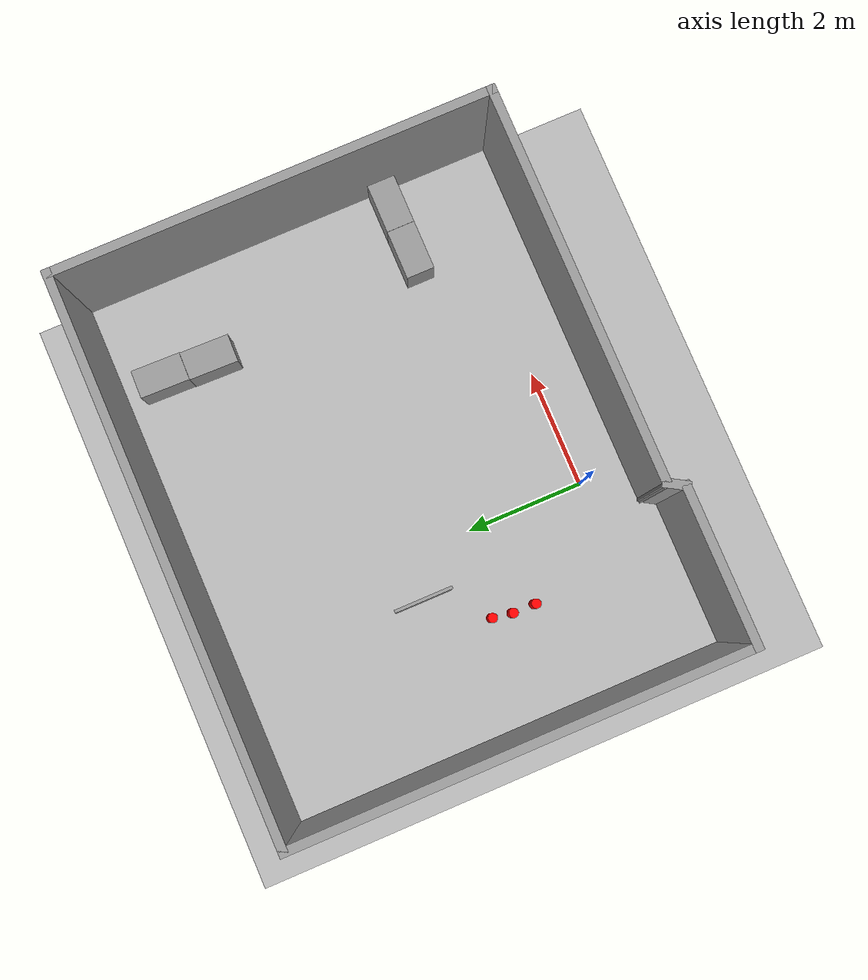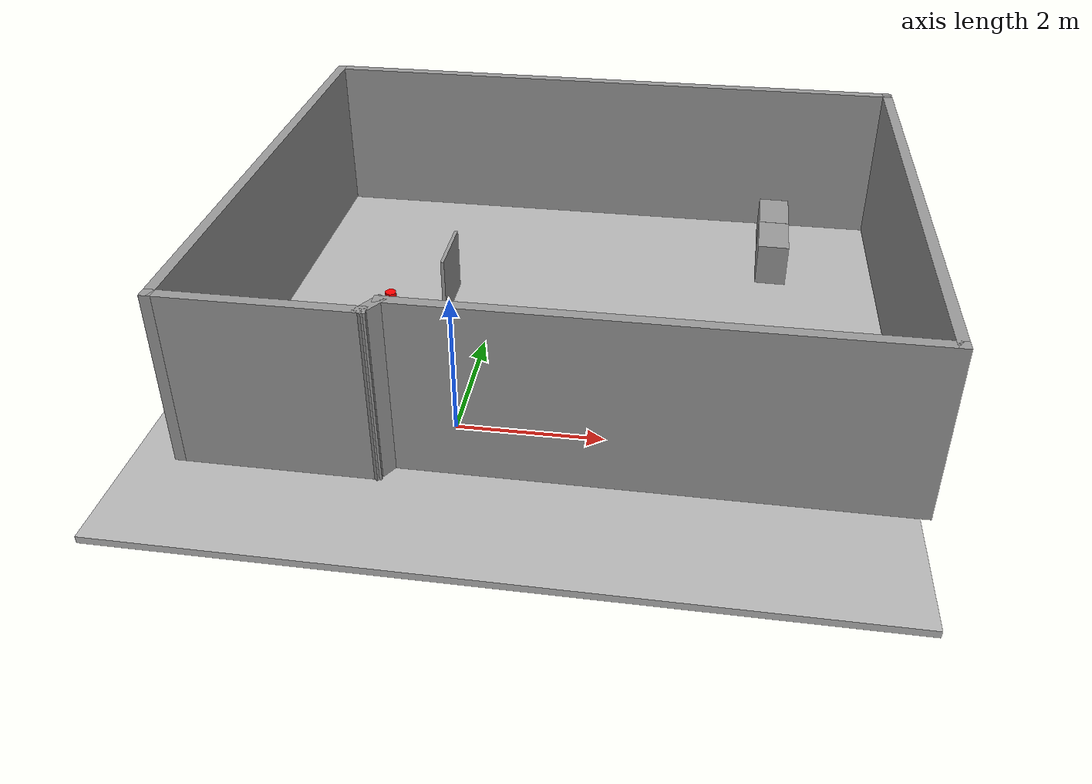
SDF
<sdf version="1.6">
 <world name="default">
  <scene>
   <ambient>0 0 0 1</ambient>
   <shadows>0</shadows>
   <grid>0</grid>
   <background>0.7 0.7 0.7 1</background>
  </scene>
  <light name="sun" type="directional">
   <pose>0 0 10 0 -0 0</pose>
   <diffuse>0.8 0.8 0.8 1</diffuse>
   <specular>0.2 0.2 0.2 1</specular>
   <attenuation>
    <range>1000</range>
    <constant>0.9</constant>
    <linear>0.01</linear>
    <quadratic>0.001</quadratic>
   </attenuation>
   <direction>-0.5 0.1 -0.9</direction>
  </light>
  <model name="ground">
   <pose>0.935909 2.37474 -0.1 0 -0 0</pose>
   <static>1</static>
   <link name="ground">
    <collision name="ground_coll"><geometry><box><size>10 10 0.1</size></box></geometry></collision>
    <visual name="ground_vis">
     <geometry><box><size>10 10 0.1</size></box></geometry>
     <material><script><uri>file://course.material</uri><name>course</name></script></material>
    </visual>
   </link>
  </model>
  <gravity>0 0 -9.8</gravity>
  <magnetic_field>6e-06 2.3e-05 -4.2e-05</magnetic_field>
  <atmosphere type="adiabatic"/>
  <physics name="default_physics" default="0" type="ode">
   <max_step_size>0.001</max_step_size>
   <real_time_factor>1</real_time_factor>
   <real_time_update_rate>1000</real_time_update_rate>
  </physics>
  <spherical_coordinates>
   <surface_model>EARTH_WGS84</surface_model>
   <latitude_deg>0</latitude_deg>
   <longitude_deg>0</longitude_deg>
   <elevation>0</elevation>
   <heading_deg>0</heading_deg>
  </spherical_coordinates>
  <model name="wall">
   <pose>1.305 2.67605 0 0 -0 0</pose>
   <link name="Wall_1">
    <collision name="Wall_1_Collision">
     <geometry><box><size>2.75 0.15 2.5</size></box></geometry>
     <pose>0 0 1.25 0 -0 0</pose>
    </collision>
    <visual name="Wall_1_Visual">
     <pose>0 0 1.25 0 -0 0</pose>
     <geometry><box><size>2.75 0.15 2.5</size></box></geometry>
     <material>
      <script><uri>file://media/materials/scripts/gazebo.material</uri><name>Gazebo/Grey</name></script>
      <ambient>1 1 1 1</ambient>
     </material>
     <meta><layer>0</layer></meta>
    </visual>
    <pose>-3.375 -3.78605 0 0 -0 3.14159</pose>
   </link>
   <link name="Wall_2">
    <collision name="Wall_2_Collision">
     <geometry><box><size>7.75 0.15 2.5</size></box></geometry>
     <pose>0 0 1.25 0 -0 0</pose>
    </collision>
    <visual name="Wall_2_Visual">
     <pose>0 0 1.25 0 -0 0</pose>
     <geometry><box><size>7.75 0.15 2.5</size></box></geometry>
     <material>
      <script><uri>file://media/materials/scripts/gazebo.material</uri><name>Gazebo/Grey</name></script>
      <ambient>1 1 1 1</ambient>
     </material>
     <meta><layer>0</layer></meta>
    </visual>
    <pose>-4.675 0.013949 0 0 -0 1.5708</pose>
   </link>
   <link name="Wall_3">
    <collision name="Wall_3_Collision">
     <geometry><box><size>9.5 0.15 2.5</size></box></geometry>
     <pose>0 0 1.25 0 -0 0</pose>
    </collision>
    <visual name="Wall_3_Visual">
     <pose>0 0 1.25 0 -0 0</pose>
     <geometry><box><size>9.5 0.15 2.5</size></box></geometry>
     <material>
      <script><uri>file://media/materials/scripts/gazebo.material</uri><name>Gazebo/Grey</name></script>
      <ambient>1 1 1 1</ambient>
     </material>
     <meta><layer>0</layer></meta>
    </visual>
    <pose>0 3.81395 0 0 -0 0</pose>
   </link>
   <link name="Wall_4">
    <collision name="Wall_4_Collision">
     <geometry><box><size>7.5 0.15 2.5</size></box></geometry>
     <pose>0 0 1.25 0 -0 0</pose>
    </collision>
    <visual name="Wall_4_Visual">
     <pose>0 0 1.25 0 -0 0</pose>
     <geometry><box><size>7.5 0.15 2.5</size></box></geometry>
     <material>
      <script><uri>file://media/materials/scripts/gazebo.material</uri><name>Gazebo/Grey</name></script>
      <ambient>1 1 1 1</ambient>
     </material>
     <meta><layer>0</layer></meta>
    </visual>
    <pose>4.675 0.138949 0 0 0 -1.5708</pose>
   </link>
   <link name="Wall_5">
    <collision name="Wall_5_Collision">
     <geometry><box><size>6.75 0.15 2.5</size></box></geometry>
     <pose>0 0 1.25 0 -0 0</pose>
    </collision>
    <visual name="Wall_5_Visual">
     <pose>0 0 1.25 0 -0 0</pose>
     <geometry><box><size>6.75 0.15 2.5</size></box></geometry>
     <material>
      <script><uri>file://media/materials/scripts/gazebo.material</uri><name>Gazebo/Grey</name></script>
      <ambient>1 1 1 1</ambient>
     </material>
     <meta><layer>0</layer></meta>
    </visual>
    <pose>1.375 -3.53605 0 0 -0 3.14159</pose>
   </link>
   <link name="Wall_6">
    <collision name="Wall_6_Collision">
     <geometry><box><size>0.441548 0.15 2.5</size></box></geometry>
     <pose>0 0 1.25 0 -0 0</pose>
    </collision>
    <visual name="Wall_6_Visual">
     <pose>0 0 1.25 0 -0 0</pose>
     <geometry><box><size>0.441548 0.15 2.5</size></box></geometry>
     <material>
      <script><uri>file://media/materials/scripts/gazebo.material</uri><name>Gazebo/Grey</name></script>
      <ambient>1 1 1 1</ambient>
     </material>
     <meta><layer>0</layer></meta>
    </visual>
    <pose>-2 -3.66105 0 0 0 -2.11122</pose>
   </link>
   <static>1</static>
  </model>
  <model name="unit_box">
   <link name="link">
    <inertial>
     <mass>1</mass>
     <inertia>
      <ixx>0.166667</ixx>
      <ixy>0</ixy>
      <ixz>0</ixz>
      <iyy>0.166667</iyy>
      <iyz>0</iyz>
      <izz>0.166667</izz>
     </inertia>
    </inertial>
    <visual name="visual">
     <geometry><box><size>0.847755 0.481233 0.678293</size></box></geometry>
     <material>
      <script><name>Gazebo/Grey</name><uri>file://media/materials/scripts/gazebo.material</uri></script>
      <shader type="pixel"><normal_map>__default__</normal_map></shader>
      <ambient>0.3 0.3 0.3 1</ambient>
      <diffuse>0.7 0.7 0.7 1</diffuse>
      <specular>0.01 0.01 0.01 1</specular>
      <emissive>0 0 0 1</emissive>
     </material>
    </visual>
    <collision name="collision">
     <geometry><box><size>0.847755 0.481233 0.678293</size></box></geometry>
     <surface>
      <friction>
       <ode><mu>1</mu><mu2>1</mu2><fdir1>0 0 0</fdir1><slip1>0</slip1><slip2>0</slip2></ode>
       <torsional>
        <coefficient>1</coefficient>
        <patch_radius>0</patch_radius>
        <surface_radius>0</surface_radius>
        <use_patch_radius>1</use_patch_radius>
        <ode><slip>0</slip></ode>
       </torsional>
      </friction>
      <bounce><restitution_coefficient>0</restitution_coefficient><threshold>1e+06</threshold></bounce>
      <contact>
       <collide_without_contact>0</collide_without_contact>
       <collide_without_contact_bitmask>1</collide_without_contact_bitmask>
       <collide_bitmask>1</collide_bitmask>
       <ode>
        <soft_cfm>0</soft_cfm>
        <soft_erp>0.2</soft_erp>
        <kp>1e+13</kp>
        <kd>1</kd>
        <max_vel>0.01</max_vel>
        <min_depth>0</min_depth>
       </ode>
       <bullet>
        <split_impulse>1</split_impulse>
        <split_impulse_penetration_threshold>-0.01</split_impulse_penetration_threshold>
        <soft_cfm>0</soft_cfm>
        <soft_erp>0.2</soft_erp>
        <kp>1e+13</kp>
        <kd>1</kd>
       </bullet>
      </contact>
     </surface>
    </collision>
   </link>
   <static>0</static>
   <pose>5.4793 1.09441 0.289141 4e-06 -8e-06 -4.3e-05</pose>
  </model>
  <model name="unit_box_clone">
   <link name="link">
    <inertial>
     <mass>1</mass>
     <inertia>
      <ixx>0.166667</ixx>
      <ixy>0</ixy>
      <ixz>0</ixz>
      <iyy>0.166667</iyy>
      <iyz>0</iyz>
      <izz>0.166667</izz>
     </inertia>
    </inertial>
    <visual name="visual">
     <geometry><box><size>0.847755 0.481233 0.678293</size></box></geometry>
     <material>
      <script><name>Gazebo/Grey</name><uri>file://media/materials/scripts/gazebo.material</uri></script>
      <shader type="pixel"><normal_map>__default__</normal_map></shader>
      <ambient>0.3 0.3 0.3 1</ambient>
      <diffuse>0.7 0.7 0.7 1</diffuse>
      <specular>0.01 0.01 0.01 1</specular>
      <emissive>0 0 0 1</emissive>
     </material>
    </visual>
    <collision name="collision">
     <geometry><box><size>0.847755 0.481233 0.678293</size></box></geometry>
     <surface>
      <friction>
       <ode><mu>1</mu><mu2>1</mu2><fdir1>0 0 0</fdir1><slip1>0</slip1><slip2>0</slip2></ode>
       <torsional>
        <coefficient>1</coefficient>
        <patch_radius>0</patch_radius>
        <surface_radius>0</surface_radius>
        <use_patch_radius>1</use_patch_radius>
        <ode><slip>0</slip></ode>
       </torsional>
      </friction>
      <bounce><restitution_coefficient>0</restitution_coefficient><threshold>1e+06</threshold></bounce>
      <contact>
       <collide_without_contact>0</collide_without_contact>
       <collide_without_contact_bitmask>1</collide_without_contact_bitmask>
       <collide_bitmask>1</collide_bitmask>
       <ode>
        <soft_cfm>0</soft_cfm>
        <soft_erp>0.2</soft_erp>
        <kp>1e+13</kp>
        <kd>1</kd>
        <max_vel>0.01</max_vel>
        <min_depth>0</min_depth>
       </ode>
       <bullet>
        <split_impulse>1</split_impulse>
        <split_impulse_penetration_threshold>-0.01</split_impulse_penetration_threshold>
        <soft_cfm>0</soft_cfm>
        <soft_erp>0.2</soft_erp>
        <kp>1e+13</kp>
        <kd>1</kd>
       </bullet>
      </contact>
     </surface>
    </collision>
   </link>
   <static>0</static>
   <pose>4.3047 5.69732 0.28914 3e-06 -7e-06 -1.59401</pose>
  </model>
  <model name="unit_box_clone_clone">
   <link name="link">
    <inertial>
     <mass>1</mass>
     <inertia>
      <ixx>0.166667</ixx>
      <ixy>0</ixy>
      <ixz>0</ixz>
      <iyy>0.166667</iyy>
      <iyz>0</iyz>
      <izz>0.166667</izz>
     </inertia>
    </inertial>
    <visual name="visual">
     <geometry><box><size>0.847755 0.481233 0.678293</size></box></geometry>
     <material>
      <script><name>Gazebo/Grey</name><uri>file://media/materials/scripts/gazebo.material</uri></script>
      <shader type="pixel"><normal_map>__default__</normal_map></shader>
      <ambient>0.3 0.3 0.3 1</ambient>
      <diffuse>0.7 0.7 0.7 1</diffuse>
      <specular>0.01 0.01 0.01 1</specular>
      <emissive>0 0 0 1</emissive>
     </material>
    </visual>
    <collision name="collision">
     <geometry><box><size>0.847755 0.481233 0.678293</size></box></geometry>
     <surface>
      <friction>
       <ode><mu>1</mu><mu2>1</mu2><fdir1>0 0 0</fdir1><slip1>0</slip1><slip2>0</slip2></ode>
       <torsional>
        <coefficient>1</coefficient>
        <patch_radius>0</patch_radius>
        <surface_radius>0</surface_radius>
        <use_patch_radius>1</use_patch_radius>
        <ode><slip>0</slip></ode>
       </torsional>
      </friction>
      <bounce><restitution_coefficient>0</restitution_coefficient><threshold>1e+06</threshold></bounce>
      <contact>
       <collide_without_contact>0</collide_without_contact>
       <collide_without_contact_bitmask>1</collide_without_contact_bitmask>
       <collide_bitmask>1</collide_bitmask>
       <ode>
        <soft_cfm>0</soft_cfm>
        <soft_erp>0.2</soft_erp>
        <kp>1e+13</kp>
        <kd>1</kd>
        <max_vel>0.01</max_vel>
        <min_depth>0</min_depth>
       </ode>
       <bullet>
        <split_impulse>1</split_impulse>
        <split_impulse_penetration_threshold>-0.01</split_impulse_penetration_threshold>
        <soft_cfm>0</soft_cfm>
        <soft_erp>0.2</soft_erp>
        <kp>1e+13</kp>
        <kd>1</kd>
       </bullet>
      </contact>
     </surface>
    </collision>
   </link>
   <static>0</static>
   <pose>4.2762 4.84818 0.289142 -6e-06 8e-06 -1.59401</pose>
  </model>
  <model name="unit_box_clone_0">
   <link name="link">
    <inertial>
     <mass>1</mass>
     <inertia>
      <ixx>0.166667</ixx>
      <ixy>0</ixy>
      <ixz>0</ixz>
      <iyy>0.166667</iyy>
      <iyz>0</iyz>
      <izz>0.166667</izz>
     </inertia>
    </inertial>
    <visual name="visual">
     <geometry><box><size>0.847755 0.481233 0.678293</size></box></geometry>
     <material>
      <script><name>Gazebo/Grey</name><uri>file://media/materials/scripts/gazebo.material</uri></script>
      <shader type="pixel"><normal_map>__default__</normal_map></shader>
      <ambient>0.3 0.3 0.3 1</ambient>
      <diffuse>0.7 0.7 0.7 1</diffuse>
      <specular>0.01 0.01 0.01 1</specular>
      <emissive>0 0 0 1</emissive>
     </material>
    </visual>
    <collision name="collision">
     <geometry><box><size>0.847755 0.481233 0.678293</size></box></geometry>
     <surface>
      <friction>
       <ode><mu>1</mu><mu2>1</mu2><fdir1>0 0 0</fdir1><slip1>0</slip1><slip2>0</slip2></ode>
       <torsional>
        <coefficient>1</coefficient>
        <patch_radius>0</patch_radius>
        <surface_radius>0</surface_radius>
        <use_patch_radius>1</use_patch_radius>
        <ode><slip>0</slip></ode>
       </torsional>
      </friction>
      <bounce><restitution_coefficient>0</restitution_coefficient><threshold>1e+06</threshold></bounce>
      <contact>
       <collide_without_contact>0</collide_without_contact>
       <collide_without_contact_bitmask>1</collide_without_contact_bitmask>
       <collide_bitmask>1</collide_bitmask>
       <ode>
        <soft_cfm>0</soft_cfm>
        <soft_erp>0.2</soft_erp>
        <kp>1e+13</kp>
        <kd>1</kd>
        <max_vel>0.01</max_vel>
        <min_depth>0</min_depth>
       </ode>
       <bullet>
        <split_impulse>1</split_impulse>
        <split_impulse_penetration_threshold>-0.01</split_impulse_penetration_threshold>
        <soft_cfm>0</soft_cfm>
        <soft_erp>0.2</soft_erp>
        <kp>1e+13</kp>
        <kd>1</kd>
       </bullet>
      </contact>
     </surface>
    </collision>
   </link>
   <static>0</static>
   <pose>4.62975 1.09381 0.289141 4e-06 -8e-06 -2.4e-05</pose>
  </model>
  <model name="red_cylinder">
   <link name="link">
    <inertial>
     <mass>1</mass>
     <inertia><ixx>0.145833</ixx><ixy>0</ixy><ixz>0</ixz><iyy>0.145833</iyy><iyz>0</iyz><izz>0.125</izz></inertia>
    </inertial>
    <visual name="visual">
     <geometry><cylinder><radius>0.0811909</radius><length>0.665165</length></cylinder></geometry>
     <material>
      <script><name>Gazebo/Grey</name><uri>file://media/materials/scripts/gazebo.material</uri></script>
      <shader type="pixel"><normal_map>__default__</normal_map></shader>
      <ambient>1 0 0 1</ambient>
      <diffuse>1 0 0 1</diffuse>
      <specular>0.01 0.01 0.01 1</specular>
      <emissive>0 0 0 1</emissive>
     </material>
    </visual>
    <collision name="collision">
     <geometry><cylinder><radius>0.081191</radius><length>0.665165</length></cylinder></geometry>
     <surface>
      <friction>
       <ode><mu>1</mu><mu2>1</mu2><fdir1>0 0 0</fdir1><slip1>0</slip1><slip2>0</slip2></ode>
       <torsional>
        <coefficient>1</coefficient>
        <patch_radius>0</patch_radius>
        <surface_radius>0</surface_radius>
        <use_patch_radius>1</use_patch_radius>
        <ode><slip>0</slip></ode>
       </torsional>
      </friction>
      <bounce><restitution_coefficient>0</restitution_coefficient><threshold>1e+06</threshold></bounce>
      <contact>
       <collide_without_contact>0</collide_without_contact>
       <collide_without_contact_bitmask>1</collide_without_contact_bitmask>
       <collide_bitmask>1</collide_bitmask>
       <ode>
        <soft_cfm>0</soft_cfm>
        <soft_erp>0.2</soft_erp>
        <kp>1e+13</kp>
        <kd>1</kd>
        <max_vel>0.01</max_vel>
        <min_depth>0</min_depth>
       </ode>
       <bullet>
        <split_impulse>1</split_impulse>
        <split_impulse_penetration_threshold>-0.01</split_impulse_penetration_threshold>
        <soft_cfm>0</soft_cfm>
        <soft_erp>0.2</soft_erp>
        <kp>1e+13</kp>
        <kd>1</kd>
       </bullet>
      </contact>
     </surface>
    </collision>
   </link>
   <static>0</static>
   <pose>-1.47542 2.24505 0.28258 6.9e-05 -4.9e-05 0.000532</pose>
  </model>
  <model name="red_cylinder_clone">
   <link name="link">
    <inertial>
     <mass>1</mass>
     <inertia><ixx>0.145833</ixx><ixy>0</ixy><ixz>0</ixz><iyy>0.145833</iyy><iyz>0</iyz><izz>0.125</izz></inertia>
    </inertial>
    <visual name="visual">
     <geometry><cylinder><radius>0.0811909</radius><length>0.665165</length></cylinder></geometry>
     <material>
      <script><name>Gazebo/Grey</name><uri>file://media/materials/scripts/gazebo.material</uri></script>
      <shader type="pixel"><normal_map>__default__</normal_map></shader>
      <ambient>1 0 0 1</ambient>
      <diffuse>1 0 0 1</diffuse>
      <specular>0.01 0.01 0.01 1</specular>
      <emissive>0 0 0 1</emissive>
     </material>
    </visual>
    <collision name="collision">
     <geometry><cylinder><radius>0.081191</radius><length>0.665165</length></cylinder></geometry>
     <surface>
      <friction>
       <ode><mu>1</mu><mu2>1</mu2><fdir1>0 0 0</fdir1><slip1>0</slip1><slip2>0</slip2></ode>
       <torsional>
        <coefficient>1</coefficient>
        <patch_radius>0</patch_radius>
        <surface_radius>0</surface_radius>
        <use_patch_radius>1</use_patch_radius>
        <ode><slip>0</slip></ode>
       </torsional>
      </friction>
      <bounce><restitution_coefficient>0</restitution_coefficient><threshold>1e+06</threshold></bounce>
      <contact>
       <collide_without_contact>0</collide_without_contact>
       <collide_without_contact_bitmask>1</collide_without_contact_bitmask>
       <collide_bitmask>1</collide_bitmask>
       <ode>
        <soft_cfm>0</soft_cfm>
        <soft_erp>0.2</soft_erp>
        <kp>1e+13</kp>
        <kd>1</kd>
        <max_vel>0.01</max_vel>
        <min_depth>0</min_depth>
       </ode>
       <bullet>
        <split_impulse>1</split_impulse>
        <split_impulse_penetration_threshold>-0.01</split_impulse_penetration_threshold>
        <soft_cfm>0</soft_cfm>
        <soft_erp>0.2</soft_erp>
        <kp>1e+13</kp>
        <kd>1</kd>
       </bullet>
      </contact>
     </surface>
    </collision>
   </link>
   <static>0</static>
   <pose>-1.53272 1.90287 0.28258 6.9e-05 -4.9e-05 0.000532</pose>
  </model>
  <model name="red_cylinder_clone_0">
   <link name="link">
    <inertial>
     <mass>1</mass>
     <inertia><ixx>0.145833</ixx><ixy>0</ixy><ixz>0</ixz><iyy>0.145833</iyy><iyz>0</iyz><izz>0.125</izz></inertia>
    </inertial>
    <visual name="visual">
     <geometry><cylinder><radius>0.0811909</radius><length>0.665165</length></cylinder></geometry>
     <material>
      <script><name>Gazebo/Grey</name><uri>file://media/materials/scripts/gazebo.material</uri></script>
      <shader type="pixel"><normal_map>__default__</normal_map></shader>
      <ambient>1 0 0 1</ambient>
      <diffuse>1 0 0 1</diffuse>
      <specular>0.01 0.01 0.01 1</specular>
      <emissive>0 0 0 1</emissive>
     </material>
    </visual>
    <collision name="collision">
     <geometry><cylinder><radius>0.081191</radius><length>0.665165</length></cylinder></geometry>
     <surface>
      <friction>
       <ode><mu>1</mu><mu2>1</mu2><fdir1>0 0 0</fdir1><slip1>0</slip1><slip2>0</slip2></ode>
       <torsional>
        <coefficient>1</coefficient>
        <patch_radius>0</patch_radius>
        <surface_radius>0</surface_radius>
        <use_patch_radius>1</use_patch_radius>
        <ode><slip>0</slip></ode>
       </torsional>
      </friction>
      <bounce><restitution_coefficient>0</restitution_coefficient><threshold>1e+06</threshold></bounce>
      <contact>
       <collide_without_contact>0</collide_without_contact>
       <collide_without_contact_bitmask>1</collide_without_contact_bitmask>
       <collide_bitmask>1</collide_bitmask>
       <ode>
        <soft_cfm>0</soft_cfm>
        <soft_erp>0.2</soft_erp>
        <kp>1e+13</kp>
        <kd>1</kd>
        <max_vel>0.01</max_vel>
        <min_depth>0</min_depth>
       </ode>
       <bullet>
        <split_impulse>1</split_impulse>
        <split_impulse_penetration_threshold>-0.01</split_impulse_penetration_threshold>
        <soft_cfm>0</soft_cfm>
        <soft_erp>0.2</soft_erp>
        <kp>1e+13</kp>
        <kd>1</kd>
       </bullet>
      </contact>
     </surface>
    </collision>
   </link>
   <static>0</static>
   <pose>-1.53883 1.50422 0.28258 6.9e-05 -4.9e-05 0.000531</pose>
  </model>
  <model name="white_board">
   <link name="link">
    <inertial>
     <mass>1</mass>
     <inertia>
      <ixx>0.166667</ixx>
      <ixy>0</ixy>
      <ixz>0</ixz>
      <iyy>0.166667</iyy>
      <iyz>0</iyz>
      <izz>0.166667</izz>
     </inertia>
    </inertial>
    <visual name="visual">
     <geometry><box><size>0.052831 1 1</size></box></geometry>
     <material>
      <script><name>Gazebo/Grey</name><uri>file://media/materials/scripts/gazebo.material</uri></script>
      <shader type="pixel"><normal_map>__default__</normal_map></shader>
      <ambient>1 1 1 1</ambient>
      <diffuse>1 1 1 1</diffuse>
      <specular>0.01 0.01 0.01 1</specular>
      <emissive>0 0 0 1</emissive>
     </material>
    </visual>
    <collision name="collision">
     <geometry><box><size>0.052831 1 1</size></box></geometry>
     <surface>
      <friction>
       <ode><mu>1</mu><mu2>1</mu2><fdir1>0 0 0</fdir1><slip1>0</slip1><slip2>0</slip2></ode>
       <torsional>
        <coefficient>1</coefficient>
        <patch_radius>0</patch_radius>
        <surface_radius>0</surface_radius>
        <use_patch_radius>1</use_patch_radius>
        <ode><slip>0</slip></ode>
       </torsional>
      </friction>
      <bounce><restitution_coefficient>0</restitution_coefficient><threshold>1e+06</threshold></bounce>
      <contact>
       <collide_without_contact>0</collide_without_contact>
       <collide_without_contact_bitmask>1</collide_without_contact_bitmask>
       <collide_bitmask>1</collide_bitmask>
       <ode>
        <soft_cfm>0</soft_cfm>
        <soft_erp>0.2</soft_erp>
        <kp>1e+13</kp>
        <kd>1</kd>
        <max_vel>0.01</max_vel>
        <min_depth>0</min_depth>
       </ode>
       <bullet>
        <split_impulse>1</split_impulse>
        <split_impulse_penetration_threshold>-0.01</split_impulse_penetration_threshold>
        <soft_cfm>0</soft_cfm>
        <soft_erp>0.2</soft_erp>
        <kp>1e+13</kp>
        <kd>1</kd>
       </bullet>
      </contact>
     </surface>
    </collision>
   </link>
   <static>0</static>
   <pose>-0.764909 3.16041 0.449994 0 2e-06 5e-06</pose>
  </model>
  <light name="user_point_light_0" type="point">
   <pose>1.55246 2.55332 1 0 -0 0</pose>
   <diffuse>0.5 0.5 0.5 1</diffuse>
   <specular>0.1 0.1 0.1 1</specular>
   <attenuation>
    <range>20</range>
    <constant>0.5</constant>
    <linear>0.01</linear>
    <quadratic>0.001</quadratic>
   </attenuation>
   <cast_shadows>0</cast_shadows>
   <direction>0 0 -1</direction>
  </light>
 </world>
</sdf>
